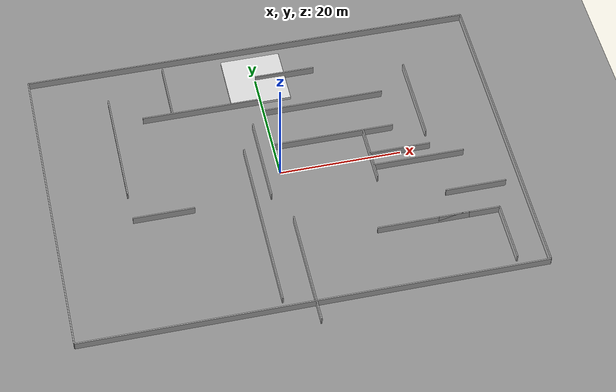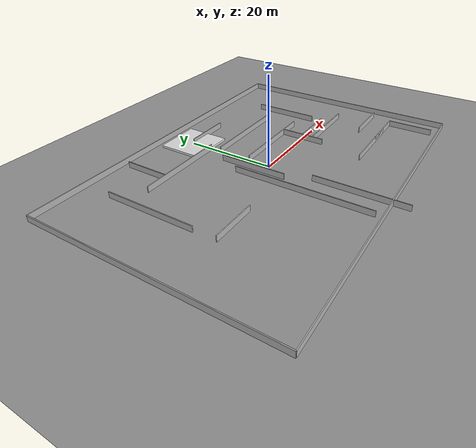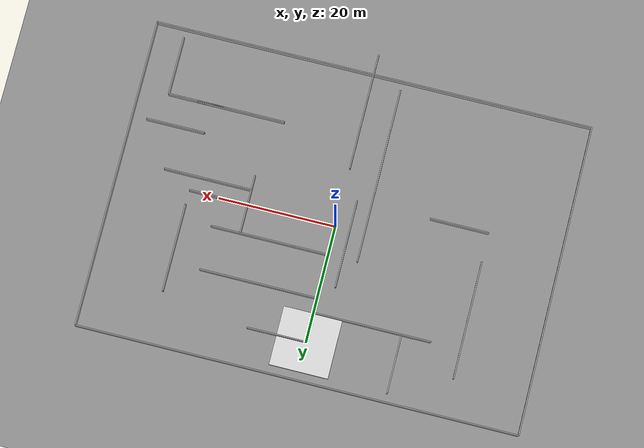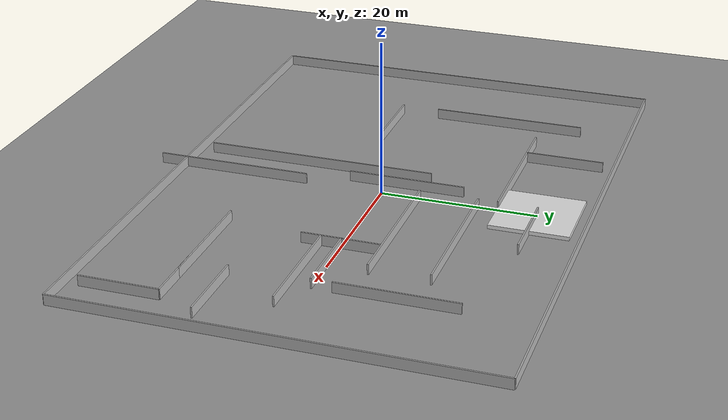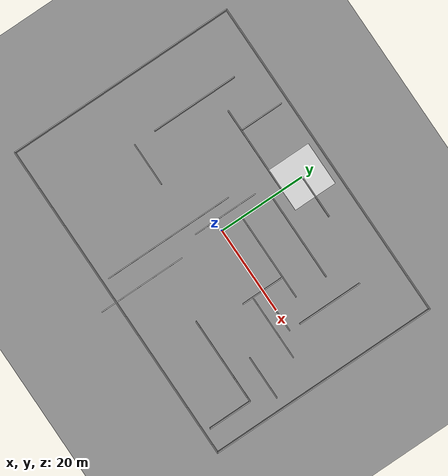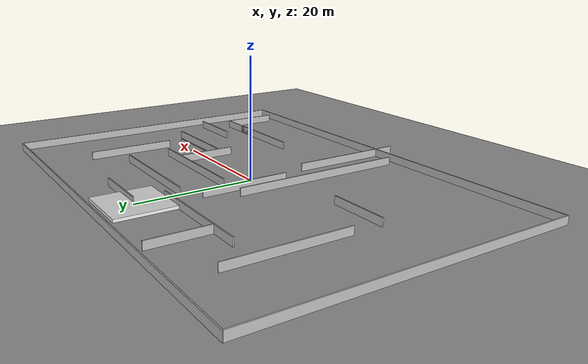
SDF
<?xml version="1.0" ?>
<sdf version='1.6'>
  <world name='default'>
    <gravity>0 0 -9.8</gravity>
    <magnetic_field>6e-06 2.3e-05 -4.2e-05</magnetic_field>
    <atmosphere type='adiabatic'/>
    <physics type='ode'>
      <max_step_size>0.001</max_step_size>
      <real_time_factor>1</real_time_factor>
      <real_time_update_rate>1000</real_time_update_rate>
    </physics>

    <plugin
      filename="gz-sim-physics-system"
      name="gz::sim::systems::Physics">
      <render_engine>gz-physics6-bullet-plugin</render_engine>
    </plugin>
    <plugin
      filename="gz-sim-user-commands-system"
      name="gz::sim::systems::UserCommands">
    </plugin>
    <plugin
      filename="gz-sim-scene-broadcaster-system"
      name="gz::sim::systems::SceneBroadcaster">
    </plugin>
    <plugin
      filename="gz-sim-sensors-system"
      name="gz::sim::systems::Sensors">
      <render_engine>ogre2</render_engine>
    </plugin>
    <plugin
      filename="gz-sim-contact-system"
      name="gz::sim::systems::Contact">
    </plugin>

    <scene>
      <ambient>0.4 0.4 0.4 1</ambient>
      <background>0.7 0.7 0.7 1</background>
      <shadows>true</shadows>
    </scene>
    <model name='ground_plane'>
      <static>true</static>
      <link name='link'>
        <collision name='collision'>
          <geometry>
            <plane>
              <size>100 100</size>
              <normal>0 0 1</normal>
            </plane>
          </geometry>
          <surface>
            <friction>
              <ode>
                <mu>0.80000000000000004</mu>
                <mu2>0.80000000000000004</mu2>
              </ode>
            </friction>
            <bounce/>
            <contact/>
          </surface>
        </collision>
        <visual name='visual'>
          <geometry>
            <plane>
              <size>100 100</size>
              <normal>0 0 1</normal>
            </plane>
          </geometry>
          <material>
            <ambient>0.4 0.4 0.4 1</ambient>
            <diffuse>0.6 0.6 0.6 1</diffuse>
            <specular>0.1 0.1 0.1 1</specular>
          </material>
        </visual>
        <pose>0 0 0 0 -0 0</pose>
        <inertial>
          <pose>0 0 0 0 -0 0</pose>
          <mass>1</mass>
          <inertia>
            <ixx>1</ixx>
            <ixy>0</ixy>
            <ixz>0</ixz>
            <iyy>1</iyy>
            <iyz>0</iyz>
            <izz>1</izz>
          </inertia>
        </inertial>
        <enable_wind>false</enable_wind>
      </link>
      <pose>0 0 0 0 -0 0</pose>
      <self_collide>false</self_collide>
    </model>
    <model name='wall_north'>
      <static>true</static>
      <pose>0 26.5 0 0 -0 0</pose>
      <link name='link'>
        <collision name='collision'>
          <geometry>
            <box>
              <size>75 0.2 2.5</size>
            </box>
          </geometry>
          <surface>
            <friction>
              <ode/>
            </friction>
            <bounce/>
            <contact/>
          </surface>
        </collision>
        <visual name='visual'>
          <geometry>
            <box>
              <size>75 0.2 2.5</size>
            </box>
          </geometry>
          <material>
            <ambient>0.5 0.5 0.5 1</ambient>
            <diffuse>0.7 0.7 0.7 1</diffuse>
            <specular>0.2 0.2 0.2 1</specular>
          </material>
        </visual>
        <pose>0 0 0 0 -0 0</pose>
        <inertial>
          <pose>0 0 0 0 -0 0</pose>
          <mass>1</mass>
          <inertia>
            <ixx>1</ixx>
            <ixy>0</ixy>
            <ixz>0</ixz>
            <iyy>1</iyy>
            <iyz>0</iyz>
            <izz>1</izz>
          </inertia>
        </inertial>
        <enable_wind>false</enable_wind>
      </link>
      <self_collide>false</self_collide>
    </model>
    <model name='wall_south'>
      <static>true</static>
      <pose>0 -26.5 0 0 -0 0</pose>
      <link name='link'>
        <collision name='collision'>
          <geometry>
            <box>
              <size>75 0.2 2.5</size>
            </box>
          </geometry>
          <surface>
            <friction>
              <ode/>
            </friction>
            <bounce/>
            <contact/>
          </surface>
        </collision>
        <visual name='visual'>
          <geometry>
            <box>
              <size>75 0.2 2.5</size>
            </box>
          </geometry>
          <material>
            <ambient>0.5 0.5 0.5 1</ambient>
            <diffuse>0.7 0.7 0.7 1</diffuse>
            <specular>0.2 0.2 0.2 1</specular>
          </material>
        </visual>
        <pose>0 0 0 0 -0 0</pose>
        <inertial>
          <pose>0 0 0 0 -0 0</pose>
          <mass>1</mass>
          <inertia>
            <ixx>1</ixx>
            <ixy>0</ixy>
            <ixz>0</ixz>
            <iyy>1</iyy>
            <iyz>0</iyz>
            <izz>1</izz>
          </inertia>
        </inertial>
        <enable_wind>false</enable_wind>
      </link>
      <self_collide>false</self_collide>
    </model>
    <model name='wall_east'>
      <static>true</static>
      <pose>37.5 0 0 0 -0 1.5707</pose>
      <link name='link'>
        <collision name='collision'>
          <geometry>
            <box>
              <size>53 0.2 2.5</size>
            </box>
          </geometry>
          <surface>
            <friction>
              <ode/>
            </friction>
            <bounce/>
            <contact/>
          </surface>
        </collision>
        <visual name='visual'>
          <geometry>
            <box>
              <size>53 0.2 2.5</size>
            </box>
          </geometry>
          <material>
            <ambient>0.5 0.5 0.5 1</ambient>
            <diffuse>0.7 0.7 0.7 1</diffuse>
            <specular>0.2 0.2 0.2 1</specular>
          </material>
        </visual>
        <pose>0 0 0 0 -0 0</pose>
        <inertial>
          <pose>0 0 0 0 -0 0</pose>
          <mass>1</mass>
          <inertia>
            <ixx>1</ixx>
            <ixy>0</ixy>
            <ixz>0</ixz>
            <iyy>1</iyy>
            <iyz>0</iyz>
            <izz>1</izz>
          </inertia>
        </inertial>
        <enable_wind>false</enable_wind>
      </link>
      <self_collide>false</self_collide>
    </model>
    <model name='wall_west'>
      <static>true</static>
      <pose>-37.5 0 0 0 -0 1.5707</pose>
      <link name='link'>
        <collision name='collision'>
          <geometry>
            <box>
              <size>53 0.2 2.5</size>
            </box>
          </geometry>
          <surface>
            <friction>
              <ode/>
            </friction>
            <bounce/>
            <contact/>
          </surface>
        </collision>
        <visual name='visual'>
          <geometry>
            <box>
              <size>53 0.2 2.5</size>
            </box>
          </geometry>
          <material>
            <ambient>0.5 0.5 0.5 1</ambient>
            <diffuse>0.7 0.7 0.7 1</diffuse>
            <specular>0.2 0.2 0.2 1</specular>
          </material>
        </visual>
        <pose>0 0 0 0 -0 0</pose>
        <inertial>
          <pose>0 0 0 0 -0 0</pose>
          <mass>1</mass>
          <inertia>
            <ixx>1</ixx>
            <ixy>0</ixy>
            <ixz>0</ixz>
            <iyy>1</iyy>
            <iyz>0</iyz>
            <izz>1</izz>
          </inertia>
        </inertial>
        <enable_wind>false</enable_wind>
      </link>
      <self_collide>false</self_collide>
    </model>
    <model name='wall_1'>
      <static>true</static>
      <pose>10 5 0 0 -0 0</pose>
      <link name='link'>
        <collision name='collision'>
          <geometry>
            <box>
              <size>20 0.2 2.5</size>
            </box>
          </geometry>
          <surface>
            <friction>
              <ode/>
            </friction>
            <bounce/>
            <contact/>
          </surface>
        </collision>
        <visual name='visual'>
          <geometry>
            <box>
              <size>20 0.2 2.5</size>
            </box>
          </geometry>
          <material>
            <ambient>0.5 0.5 0.5 1</ambient>
            <diffuse>0.7 0.7 0.7 1</diffuse>
            <specular>0.2 0.2 0.2 1</specular>
          </material>
        </visual>
        <pose>0 0 0 0 -0 0</pose>
        <inertial>
          <pose>0 0 0 0 -0 0</pose>
          <mass>1</mass>
          <inertia>
            <ixx>1</ixx>
            <ixy>0</ixy>
            <ixz>0</ixz>
            <iyy>1</iyy>
            <iyz>0</iyz>
            <izz>1</izz>
          </inertia>
        </inertial>
        <enable_wind>false</enable_wind>
      </link>
      <self_collide>false</self_collide>
    </model>
    <model name='wall_2'>
      <static>true</static>
      <pose>-5 -10 0 0 -0 1.5707</pose>
      <link name='link'>
        <collision name='collision'>
          <geometry>
            <box>
              <size>30 0.2 2.5</size>
            </box>
          </geometry>
          <surface>
            <friction>
              <ode/>
            </friction>
            <bounce/>
            <contact/>
          </surface>
        </collision>
        <visual name='visual'>
          <geometry>
            <box>
              <size>30 0.2 2.5</size>
            </box>
          </geometry>
          <material>
            <ambient>0.5 0.5 0.5 1</ambient>
            <diffuse>0.7 0.7 0.7 1</diffuse>
            <specular>0.2 0.2 0.2 1</specular>
          </material>
        </visual>
        <pose>0 0 0 0 -0 0</pose>
        <inertial>
          <pose>0 0 0 0 -0 0</pose>
          <mass>1</mass>
          <inertia>
            <ixx>1</ixx>
            <ixy>0</ixy>
            <ixz>0</ixz>
            <iyy>1</iyy>
            <iyz>0</iyz>
            <izz>1</izz>
          </inertia>
        </inertial>
        <enable_wind>false</enable_wind>
      </link>
      <self_collide>false</self_collide>
    </model>
    <model name='wall_3'>
      <static>true</static>
      <pose>20 -15 0 0 -0 0</pose>
      <link name='link'>
        <collision name='collision'>
          <geometry>
            <box>
              <size>15 0.2 2.5</size>
            </box>
          </geometry>
          <surface>
            <friction>
              <ode/>
            </friction>
            <bounce/>
            <contact/>
          </surface>
        </collision>
        <visual name='visual'>
          <geometry>
            <box>
              <size>15 0.2 2.5</size>
            </box>
          </geometry>
          <material>
            <ambient>0.5 0.5 0.5 1</ambient>
            <diffuse>0.7 0.7 0.7 1</diffuse>
            <specular>0.2 0.2 0.2 1</specular>
          </material>
        </visual>
        <pose>0 0 0 0 -0 0</pose>
        <inertial>
          <pose>0 0 0 0 -0 0</pose>
          <mass>1</mass>
          <inertia>
            <ixx>1</ixx>
            <ixy>0</ixy>
            <ixz>0</ixz>
            <iyy>1</iyy>
            <iyz>0</iyz>
            <izz>1</izz>
          </inertia>
        </inertial>
        <enable_wind>false</enable_wind>
      </link>
      <self_collide>false</self_collide>
    </model>
    <model name='wall_4'>
      <static>true</static>
      <pose>-25 10 0 0 -0 1.5707</pose>
      <link name='link'>
        <collision name='collision'>
          <geometry>
            <box>
              <size>20 0.2 2.5</size>
            </box>
          </geometry>
          <surface>
            <friction>
              <ode/>
            </friction>
            <bounce/>
            <contact/>
          </surface>
        </collision>
        <visual name='visual'>
          <geometry>
            <box>
              <size>20 0.2 2.5</size>
            </box>
          </geometry>
          <material>
            <ambient>0.5 0.5 0.5 1</ambient>
            <diffuse>0.7 0.7 0.7 1</diffuse>
            <specular>0.2 0.2 0.2 1</specular>
          </material>
        </visual>
        <pose>0 0 0 0 -0 0</pose>
        <inertial>
          <pose>0 0 0 0 -0 0</pose>
          <mass>1</mass>
          <inertia>
            <ixx>1</ixx>
            <ixy>0</ixy>
            <ixz>0</ixz>
            <iyy>1</iyy>
            <iyz>0</iyz>
            <izz>1</izz>
          </inertia>
        </inertial>
        <enable_wind>false</enable_wind>
      </link>
      <self_collide>false</self_collide>
    </model>
    <model name='wall_5'>
      <static>true</static>
      <pose>5 20 0 0 -0 0</pose>
      <link name='link'>
        <collision name='collision'>
          <geometry>
            <box>
              <size>10 0.2 2.5</size>
            </box>
          </geometry>
          <surface>
            <friction>
              <ode/>
            </friction>
            <bounce/>
            <contact/>
          </surface>
        </collision>
        <visual name='visual'>
          <geometry>
            <box>
              <size>10 0.2 2.5</size>
            </box>
          </geometry>
          <material>
            <ambient>0.5 0.5 0.5 1</ambient>
            <diffuse>0.7 0.7 0.7 1</diffuse>
            <specular>0.2 0.2 0.2 1</specular>
          </material>
        </visual>
        <pose>0 0 0 0 -0 0</pose>
        <inertial>
          <pose>0 0 0 0 -0 0</pose>
          <mass>1</mass>
          <inertia>
            <ixx>1</ixx>
            <ixy>0</ixy>
            <ixz>0</ixz>
            <iyy>1</iyy>
            <iyz>0</iyz>
            <izz>1</izz>
          </inertia>
        </inertial>
        <enable_wind>false</enable_wind>
      </link>
      <self_collide>false</self_collide>
    </model>
    <model name='wall_6'>
      <static>true</static>
      <pose>15 0 0 0 -0 1.5707</pose>
      <link name='link'>
        <collision name='collision'>
          <geometry>
            <box>
              <size>10 0.2 2.5</size>
            </box>
          </geometry>
          <surface>
            <friction>
              <ode/>
            </friction>
            <bounce/>
            <contact/>
          </surface>
        </collision>
        <visual name='visual'>
          <geometry>
            <box>
              <size>10 0.2 2.5</size>
            </box>
          </geometry>
          <material>
            <ambient>0.5 0.5 0.5 1</ambient>
            <diffuse>0.7 0.7 0.7 1</diffuse>
            <specular>0.2 0.2 0.2 1</specular>
          </material>
        </visual>
        <pose>0 0 0 0 -0 0</pose>
        <inertial>
          <pose>0 0 0 0 -0 0</pose>
          <mass>1</mass>
          <inertia>
            <ixx>1</ixx>
            <ixy>0</ixy>
            <ixz>0</ixz>
            <iyy>1</iyy>
            <iyz>0</iyz>
            <izz>1</izz>
          </inertia>
        </inertial>
        <enable_wind>false</enable_wind>
      </link>
      <self_collide>false</self_collide>
    </model>
    <model name='wall_7'>
      <static>true</static>
      <pose>-10 15 0 0 -0 0</pose>
      <link name='link'>
        <collision name='collision'>
          <geometry>
            <box>
              <size>20 0.2 2.5</size>
            </box>
          </geometry>
          <surface>
            <friction>
              <ode/>
            </friction>
            <bounce/>
            <contact/>
          </surface>
        </collision>
        <visual name='visual'>
          <geometry>
            <box>
              <size>20 0.2 2.5</size>
            </box>
          </geometry>
          <material>
            <ambient>0.5 0.5 0.5 1</ambient>
            <diffuse>0.7 0.7 0.7 1</diffuse>
            <specular>0.2 0.2 0.2 1</specular>
          </material>
        </visual>
        <pose>0 0 0 0 -0 0</pose>
        <inertial>
          <pose>0 0 0 0 -0 0</pose>
          <mass>1</mass>
          <inertia>
            <ixx>1</ixx>
            <ixy>0</ixy>
            <ixz>0</ixz>
            <iyy>1</iyy>
            <iyz>0</iyz>
            <izz>1</izz>
          </inertia>
        </inertial>
        <enable_wind>false</enable_wind>
      </link>
      <self_collide>false</self_collide>
    </model>
    <model name='wall_8'>
      <static>true</static>
      <pose>25 10 0 0 -0 1.5707</pose>
      <link name='link'>
        <collision name='collision'>
          <geometry>
            <box>
              <size>15 0.2 2.5</size>
            </box>
          </geometry>
          <surface>
            <friction>
              <ode/>
            </friction>
            <bounce/>
            <contact/>
          </surface>
        </collision>
        <visual name='visual'>
          <geometry>
            <box>
              <size>15 0.2 2.5</size>
            </box>
          </geometry>
          <material>
            <ambient>0.5 0.5 0.5 1</ambient>
            <diffuse>0.7 0.7 0.7 1</diffuse>
            <specular>0.2 0.2 0.2 1</specular>
          </material>
        </visual>
        <pose>0 0 0 0 -0 0</pose>
        <inertial>
          <pose>0 0 0 0 -0 0</pose>
          <mass>1</mass>
          <inertia>
            <ixx>1</ixx>
            <ixy>0</ixy>
            <ixz>0</ixz>
            <iyy>1</iyy>
            <iyz>0</iyz>
            <izz>1</izz>
          </inertia>
        </inertial>
        <enable_wind>false</enable_wind>
      </link>
      <self_collide>false</self_collide>
    </model>
    <model name='wall_9'>
      <static>true</static>
      <pose>-20 -5 0 0 -0 0</pose>
      <link name='link'>
        <collision name='collision'>
          <geometry>
            <box>
              <size>10 0.2 2.5</size>
            </box>
          </geometry>
          <surface>
            <friction>
              <ode/>
            </friction>
            <bounce/>
            <contact/>
          </surface>
        </collision>
        <visual name='visual'>
          <geometry>
            <box>
              <size>10 0.2 2.5</size>
            </box>
          </geometry>
          <material>
            <ambient>0.5 0.5 0.5 1</ambient>
            <diffuse>0.7 0.7 0.7 1</diffuse>
            <specular>0.2 0.2 0.2 1</specular>
          </material>
        </visual>
        <pose>0 0 0 0 -0 0</pose>
        <inertial>
          <pose>0 0 0 0 -0 0</pose>
          <mass>1</mass>
          <inertia>
            <ixx>1</ixx>
            <ixy>0</ixy>
            <ixz>0</ixz>
            <iyy>1</iyy>
            <iyz>0</iyz>
            <izz>1</izz>
          </inertia>
        </inertial>
        <enable_wind>false</enable_wind>
      </link>
      <self_collide>false</self_collide>
    </model>
    <model name='wall_10'>
      <static>true</static>
      <pose>30 -10 0 0 -0 0</pose>
      <link name='link'>
        <collision name='collision'>
          <geometry>
            <box>
              <size>10 0.2 2.5</size>
            </box>
          </geometry>
          <surface>
            <friction>
              <ode/>
            </friction>
            <bounce/>
            <contact/>
          </surface>
        </collision>
        <visual name='visual'>
          <geometry>
            <box>
              <size>10 0.2 2.5</size>
            </box>
          </geometry>
          <material>
            <ambient>0.5 0.5 0.5 1</ambient>
            <diffuse>0.7 0.7 0.7 1</diffuse>
            <specular>0.2 0.2 0.2 1</specular>
          </material>
        </visual>
        <pose>0 0 0 0 -0 0</pose>
        <inertial>
          <pose>0 0 0 0 -0 0</pose>
          <mass>1</mass>
          <inertia>
            <ixx>1</ixx>
            <ixy>0</ixy>
            <ixz>0</ixz>
            <iyy>1</iyy>
            <iyz>0</iyz>
            <izz>1</izz>
          </inertia>
        </inertial>
        <enable_wind>false</enable_wind>
      </link>
      <self_collide>false</self_collide>
    </model>
    <model name='wall_11'>
      <static>true</static>
      <pose>-15 20 0 0 -0 1.5707</pose>
      <link name='link'>
        <collision name='collision'>
          <geometry>
            <box>
              <size>10 0.2 2.5</size>
            </box>
          </geometry>
          <surface>
            <friction>
              <ode/>
            </friction>
            <bounce/>
            <contact/>
          </surface>
        </collision>
        <visual name='visual'>
          <geometry>
            <box>
              <size>10 0.2 2.5</size>
            </box>
          </geometry>
          <material>
            <ambient>0.5 0.5 0.5 1</ambient>
            <diffuse>0.7 0.7 0.7 1</diffuse>
            <specular>0.2 0.2 0.2 1</specular>
          </material>
        </visual>
        <pose>0 0 0 0 -0 0</pose>
        <inertial>
          <pose>0 0 0 0 -0 0</pose>
          <mass>1</mass>
          <inertia>
            <ixx>1</ixx>
            <ixy>0</ixy>
            <ixz>0</ixz>
            <iyy>1</iyy>
            <iyz>0</iyz>
            <izz>1</izz>
          </inertia>
        </inertial>
        <enable_wind>false</enable_wind>
      </link>
      <self_collide>false</self_collide>
    </model>
    <model name='wall_12'>
      <static>true</static>
      <pose>20 0 0 0 -0 0</pose>
      <link name='link'>
        <collision name='collision'>
          <geometry>
            <box>
              <size>10 0.2 2.5</size>
            </box>
          </geometry>
          <surface>
            <friction>
              <ode/>
            </friction>
            <bounce/>
            <contact/>
          </surface>
        </collision>
        <visual name='visual'>
          <geometry>
            <box>
              <size>10 0.2 2.5</size>
            </box>
          </geometry>
          <material>
            <ambient>0.5 0.5 0.5 1</ambient>
            <diffuse>0.7 0.7 0.7 1</diffuse>
            <specular>0.2 0.2 0.2 1</specular>
          </material>
        </visual>
        <pose>0 0 0 0 -0 0</pose>
        <inertial>
          <pose>0 0 0 0 -0 0</pose>
          <mass>1</mass>
          <inertia>
            <ixx>1</ixx>
            <ixy>0</ixy>
            <ixz>0</ixz>
            <iyy>1</iyy>
            <iyz>0</iyz>
            <izz>1</izz>
          </inertia>
        </inertial>
        <enable_wind>false</enable_wind>
      </link>
      <self_collide>false</self_collide>
    </model>
    <model name='wall_13'>
      <static>true</static>
      <pose>0 -20 0 0 -0 1.5707</pose>
      <link name='link'>
        <collision name='collision'>
          <geometry>
            <box>
              <size>20 0.2 2.5</size>
            </box>
          </geometry>
          <surface>
            <friction>
              <ode/>
            </friction>
            <bounce/>
            <contact/>
          </surface>
        </collision>
        <visual name='visual'>
          <geometry>
            <box>
              <size>20 0.2 2.5</size>
            </box>
          </geometry>
          <material>
            <ambient>0.5 0.5 0.5 1</ambient>
            <diffuse>0.7 0.7 0.7 1</diffuse>
            <specular>0.2 0.2 0.2 1</specular>
          </material>
        </visual>
        <pose>0 0 0 0 -0 0</pose>
        <inertial>
          <pose>0 0 0 0 -0 0</pose>
          <mass>1</mass>
          <inertia>
            <ixx>1</ixx>
            <ixy>0</ixy>
            <ixz>0</ixz>
            <iyy>1</iyy>
            <iyz>0</iyz>
            <izz>1</izz>
          </inertia>
        </inertial>
        <enable_wind>false</enable_wind>
      </link>
      <self_collide>false</self_collide>
    </model>
    <model name='wall_14'>
      <static>true</static>
      <pose>10 12.5 0 0 -0 0</pose>
      <link name='link'>
        <collision name='collision'>
          <geometry>
            <box>
              <size>20 0.2 2.5</size>
            </box>
          </geometry>
          <surface>
            <friction>
              <ode/>
            </friction>
            <bounce/>
            <contact/>
          </surface>
        </collision>
        <visual name='visual'>
          <geometry>
            <box>
              <size>20 0.2 2.5</size>
            </box>
          </geometry>
          <material>
            <ambient>0.5 0.5 0.5 1</ambient>
            <diffuse>0.7 0.7 0.7 1</diffuse>
            <specular>0.2 0.2 0.2 1</specular>
          </material>
        </visual>
        <pose>0 0 0 0 -0 0</pose>
        <inertial>
          <pose>0 0 0 0 -0 0</pose>
          <mass>1</mass>
          <inertia>
            <ixx>1</ixx>
            <ixy>0</ixy>
            <ixz>0</ixz>
            <iyy>1</iyy>
            <iyz>0</iyz>
            <izz>1</izz>
          </inertia>
        </inertial>
        <enable_wind>false</enable_wind>
      </link>
      <self_collide>false</self_collide>
    </model>
    <model name='wall_15'>
      <static>true</static>
      <pose>-2.5 2.5 0 0 -0 1.5707</pose>
      <link name='link'>
        <collision name='collision'>
          <geometry>
            <box>
              <size>15 0.2 2.5</size>
            </box>
          </geometry>
          <surface>
            <friction>
              <ode/>
            </friction>
            <bounce/>
            <contact/>
          </surface>
        </collision>
        <visual name='visual'>
          <geometry>
            <box>
              <size>15 0.2 2.5</size>
            </box>
          </geometry>
          <material>
            <ambient>0.5 0.5 0.5 1</ambient>
            <diffuse>0.7 0.7 0.7 1</diffuse>
            <specular>0.2 0.2 0.2 1</specular>
          </material>
        </visual>
        <pose>0 0 0 0 -0 0</pose>
        <inertial>
          <pose>0 0 0 0 -0 0</pose>
          <mass>1</mass>
          <inertia>
            <ixx>1</ixx>
            <ixy>0</ixy>
            <ixz>0</ixz>
            <iyy>1</iyy>
            <iyz>0</iyz>
            <izz>1</izz>
          </inertia>
        </inertial>
        <enable_wind>false</enable_wind>
      </link>
      <self_collide>false</self_collide>
    </model>
    <model name='wall_16'>
      <static>true</static>
      <pose>22.5 -2.5 0 0 -0 0</pose>
      <link name='link'>
        <collision name='collision'>
          <geometry>
            <box>
              <size>15 0.2 2.5</size>
            </box>
          </geometry>
          <surface>
            <friction>
              <ode/>
            </friction>
            <bounce/>
            <contact/>
          </surface>
        </collision>
        <visual name='visual'>
          <geometry>
            <box>
              <size>15 0.2 2.5</size>
            </box>
          </geometry>
          <material>
            <ambient>0.5 0.5 0.5 1</ambient>
            <diffuse>0.7 0.7 0.7 1</diffuse>
            <specular>0.2 0.2 0.2 1</specular>
          </material>
        </visual>
        <pose>0 0 0 0 -0 0</pose>
        <inertial>
          <pose>0 0 0 0 -0 0</pose>
          <mass>1</mass>
          <inertia>
            <ixx>1</ixx>
            <ixy>0</ixy>
            <ixz>0</ixz>
            <iyy>1</iyy>
            <iyz>0</iyz>
            <izz>1</izz>
          </inertia>
        </inertial>
        <enable_wind>false</enable_wind>
      </link>
      <self_collide>false</self_collide>
    </model>
    <model name='wall_17'>
      <static>true</static>
      <pose>32.5 -20 0 0 -0 1.5707</pose>
      <link name='link'>
        <collision name='collision'>
          <geometry>
            <box>
              <size>10 0.2 2.5</size>
            </box>
          </geometry>
          <surface>
            <friction>
              <ode/>
            </friction>
            <bounce/>
            <contact/>
          </surface>
        </collision>
        <visual name='visual'>
          <geometry>
            <box>
              <size>10 0.2 2.5</size>
            </box>
          </geometry>
          <material>
            <ambient>0.5 0.5 0.5 1</ambient>
            <diffuse>0.7 0.7 0.7 1</diffuse>
            <specular>0.2 0.2 0.2 1</specular>
          </material>
        </visual>
        <pose>0 0 0 0 -0 0</pose>
        <inertial>
          <pose>0 0 0 0 -0 0</pose>
          <mass>1</mass>
          <inertia>
            <ixx>1</ixx>
            <ixy>0</ixy>
            <ixz>0</ixz>
            <iyy>1</iyy>
            <iyz>0</iyz>
            <izz>1</izz>
          </inertia>
        </inertial>
        <enable_wind>false</enable_wind>
      </link>
      <self_collide>false</self_collide>
    </model>
    <model name='wall_18'>
      <static>true</static>
      <pose>27.5 -15 0 0 -0 0</pose>
      <link name='link'>
        <collision name='collision'>
          <geometry>
            <box>
              <size>10 0.2 2.5</size>
            </box>
          </geometry>
          <surface>
            <friction>
              <ode/>
            </friction>
            <bounce/>
            <contact/>
          </surface>
        </collision>
        <visual name='visual'>
          <geometry>
            <box>
              <size>10 0.2 2.5</size>
            </box>
          </geometry>
          <material>
            <ambient>0.5 0.5 0.5 1</ambient>
            <diffuse>0.7 0.7 0.7 1</diffuse>
            <specular>0.2 0.2 0.2 1</specular>
          </material>
        </visual>
        <pose>0 0 0 0 -0 0</pose>
        <inertial>
          <pose>0 0 0 0 -0 0</pose>
          <mass>1</mass>
          <inertia>
            <ixx>1</ixx>
            <ixy>0</ixy>
            <ixz>0</ixz>
            <iyy>1</iyy>
            <iyz>0</iyz>
            <izz>1</izz>
          </inertia>
        </inertial>
        <enable_wind>false</enable_wind>
      </link>
      <self_collide>false</self_collide>
    </model>
    <model name='storage_area_1'>
      <static>true</static>
      <pose>0 20 0.25 0 -0 0</pose>
      <link name='body'>
        <visual name='visual'>
          <geometry>
            <box>
              <size>10 10 0.5</size>
            </box>
          </geometry>
          <material>
            <ambient>0.7 0.7 0.7 1</ambient>
            <diffuse>0.9 0.9 0.9 1</diffuse>
            <specular>0.2 0.2 0.2 1</specular>
          </material>
        </visual>
        <collision name='collision'>
          <geometry>
            <box>
              <size>10 10 0.5</size>
            </box>
          </geometry>
          <surface>
            <friction>
              <ode/>
            </friction>
            <bounce/>
            <contact/>
          </surface>
        </collision>
        <pose>0 0 0 0 -0 0</pose>
        <inertial>
          <pose>0 0 0 0 -0 0</pose>
          <mass>1</mass>
          <inertia>
            <ixx>1</ixx>
            <ixy>0</ixy>
            <ixz>0</ixz>
            <iyy>1</iyy>
            <iyz>0</iyz>
            <izz>1</izz>
          </inertia>
        </inertial>
        <enable_wind>false</enable_wind>
      </link>
      <self_collide>false</self_collide>
    </model>
  </world>
</sdf>
